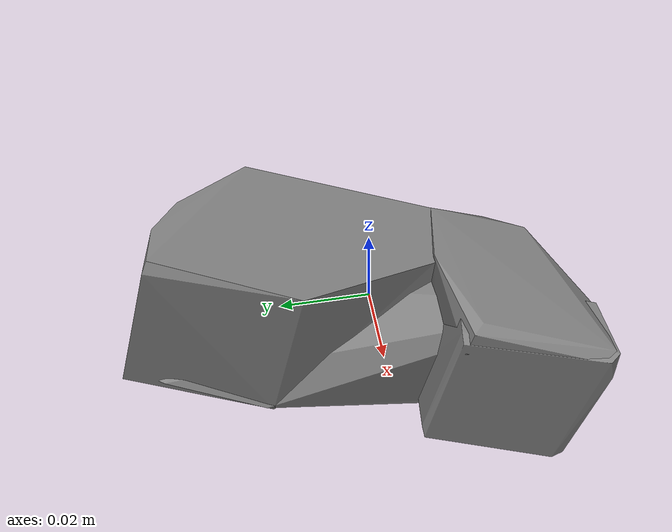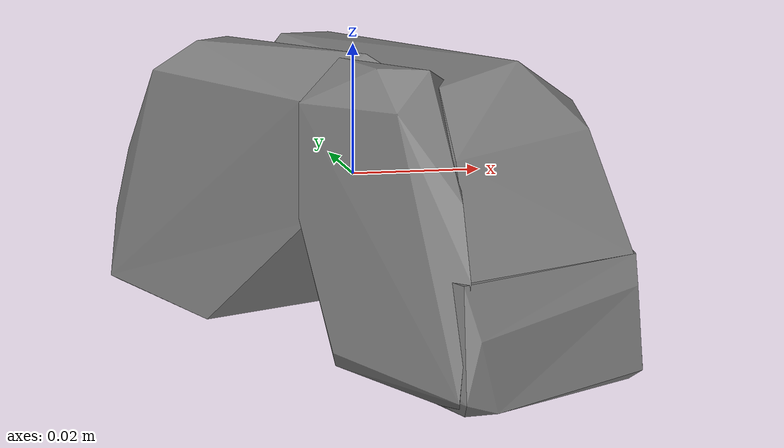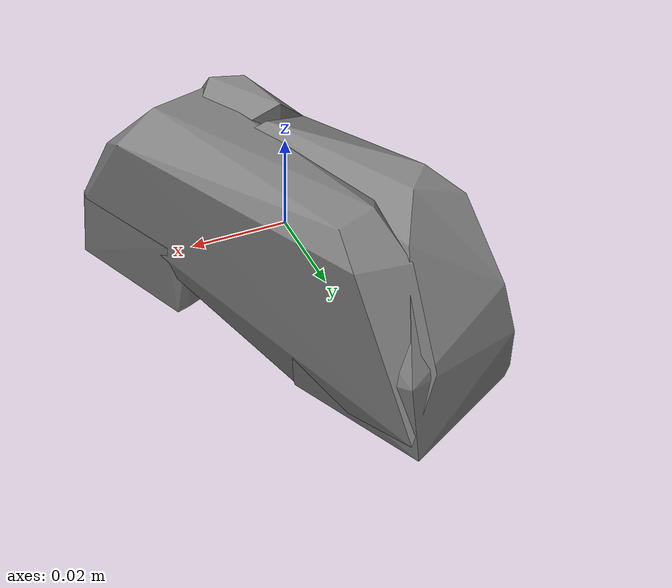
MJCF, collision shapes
<mujoco model="e_lego_duplo">
  <compiler angle="radian" />

  <asset>
    <mesh name="e_lego_duplo_visual_mesh" file="e_lego_duplo/textured.obj" />
    <mesh name="e_lego_duplo_collision_mesh_0" file="e_lego_duplo/textured_coacd_0.stl" />
    <mesh name="e_lego_duplo_collision_mesh_1" file="e_lego_duplo/textured_coacd_1.stl" />
    <mesh name="e_lego_duplo_collision_mesh_2" file="e_lego_duplo/textured_coacd_2.stl" />
    <mesh name="e_lego_duplo_collision_mesh_3" file="e_lego_duplo/textured_coacd_3.stl" />
    <texture name="e_lego_duplo_texture" type="2d" file="e_lego_duplo/texture_map.png" />
    <material name="e_lego_duplo_material" texture="e_lego_duplo_texture" />
  </asset>

  <worldbody>
    <body name="e_lego_duplo" pos="0 0 0" euler="0 0 0">
      <freejoint name="e_lego_duplo_joint" />
      <geom name="e_lego_duplo_visual_geom" type="mesh" mesh="e_lego_duplo_visual_mesh" material="e_lego_duplo_material" pos="0.023206841063979647 0.05012559062881336 -0.023705285345941213" euler="0 0 0" contype="0" conaffinity="0" group="0" />
      <geom name="e_lego_duplo_collision_geom_0" type="mesh" mesh="e_lego_duplo_collision_mesh_0" pos="0.023206841063979647 0.05012559062881336 -0.023705285345941213" euler="0 0 0" contype="1" conaffinity="1" group="3" />
      <geom name="e_lego_duplo_collision_geom_1" type="mesh" mesh="e_lego_duplo_collision_mesh_1" pos="0.023206841063979647 0.05012559062881336 -0.023705285345941213" euler="0 0 0" contype="1" conaffinity="1" group="3" />
      <geom name="e_lego_duplo_collision_geom_2" type="mesh" mesh="e_lego_duplo_collision_mesh_2" pos="0.023206841063979647 0.05012559062881336 -0.023705285345941213" euler="0 0 0" contype="1" conaffinity="1" group="3" />
      <geom name="e_lego_duplo_collision_geom_3" type="mesh" mesh="e_lego_duplo_collision_mesh_3" pos="0.023206841063979647 0.05012559062881336 -0.023705285345941213" euler="0 0 0" contype="1" conaffinity="1" group="3" />
      <inertial pos="0 0 0" euler="0 0 0" mass="0.0372" diaginertia="0.001 0.001 0.001" />
    </body>
  </worldbody>
</mujoco>
